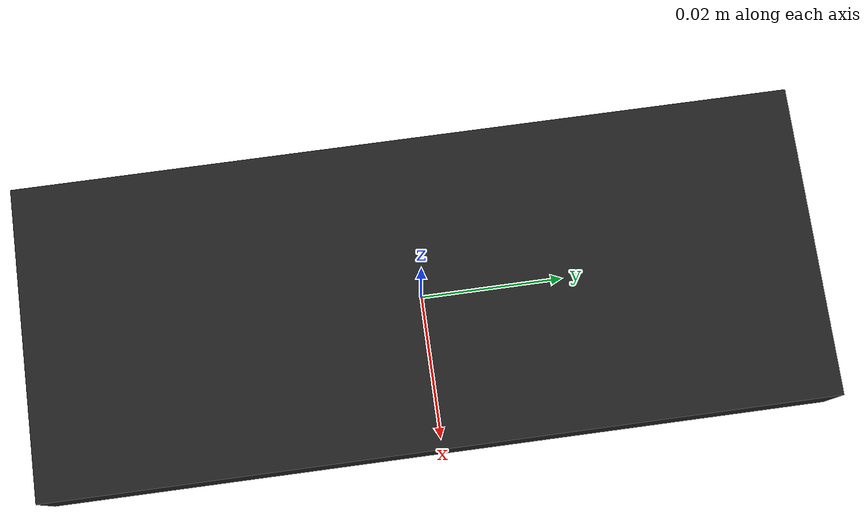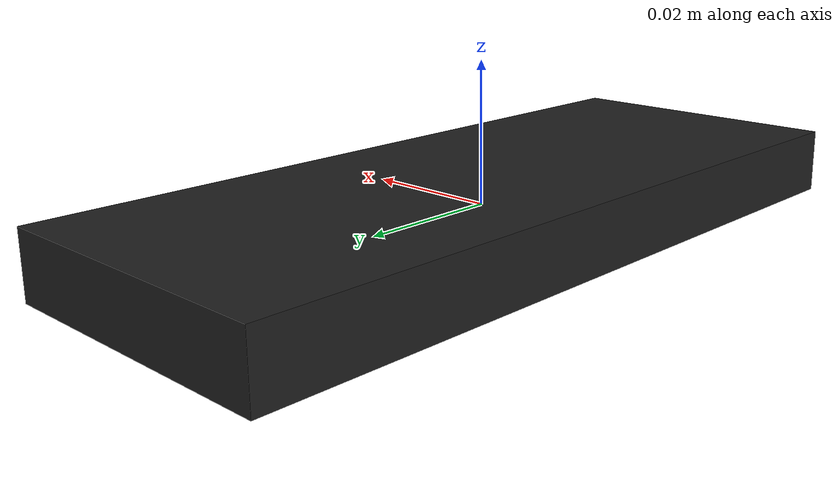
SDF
<?xml version='1.0'?>
<sdf version='1.7'>
  <model name='board'>
    <link name='link_0'>
      <inertial>
        <mass>4.4908e-05</mass>
        <inertia>
          <ixx>4.53312e-08</ixx>
          <ixy>0</ixy>
          <ixz>0</ixz>
          <iyy>7.47243e-09</iyy>
          <iyz>0</iyz>
          <izz>5.21385e-08</izz>
        </inertia>
        <pose>0 0 0 0 -0 0</pose>
      </inertial>
      <pose>-3e-06 -2e-06 0 0 -0 0</pose>
      <visual name='visual'>
        <pose>0 0 0 0 -0 0</pose>
        <geometry>
          <box>
            <size>0.043679 0.109655 0.009427</size>
          </box>
        </geometry>
        <material>
          <lighting>1</lighting>
          <script>
            <uri>file://media/materials/scripts/gazebo.material</uri>
            <name>Gazebo/Black</name>
          </script>
          <shader type='pixel'/>
        </material>
        <transparency>0</transparency>
        <cast_shadows>1</cast_shadows>
      </visual>
      <collision name='collision'>
        <laser_retro>0</laser_retro>
        <max_contacts>10</max_contacts>
        <pose>0 0 0 0 -0 0</pose>
        <geometry>
          <box>
            <size>0.043679 0.109655 0.009427</size>
          </box>
        </geometry>
        <surface>
          <friction>
            <ode>
              <mu>1</mu>
              <mu2>1</mu2>
              <fdir1>0 0 0</fdir1>
              <slip1>0</slip1>
              <slip2>0</slip2>
            </ode>
            <torsional>
              <coefficient>1</coefficient>
              <patch_radius>0</patch_radius>
              <surface_radius>0</surface_radius>
              <use_patch_radius>1</use_patch_radius>
              <ode>
                <slip>0</slip>
              </ode>
            </torsional>
          </friction>
          <bounce>
            <restitution_coefficient>0</restitution_coefficient>
            <threshold>1e+06</threshold>
          </bounce>
          <contact>
            <collide_without_contact>0</collide_without_contact>
            <collide_without_contact_bitmask>1</collide_without_contact_bitmask>
            <collide_bitmask>1</collide_bitmask>
            <ode>
              <soft_cfm>0</soft_cfm>
              <soft_erp>0.2</soft_erp>
              <kp>1e+13</kp>
              <kd>1</kd>
              <max_vel>0.01</max_vel>
              <min_depth>0</min_depth>
            </ode>
            <bullet>
              <split_impulse>1</split_impulse>
              <split_impulse_penetration_threshold>-0.01</split_impulse_penetration_threshold>
              <soft_cfm>0</soft_cfm>
              <soft_erp>0.2</soft_erp>
              <kp>1e+13</kp>
              <kd>1</kd>
            </bullet>
          </contact>
        </surface>
      </collision>

      <include>
        <uri>model://camera_sensor</uri>
        <pose>
          0.2 0.0 0.3
          0.0 0.0 0.0
        </pose>
      </include>

    </link>
    <static>0</static>
    <allow_auto_disable>1</allow_auto_disable>
  </model>
</sdf>
